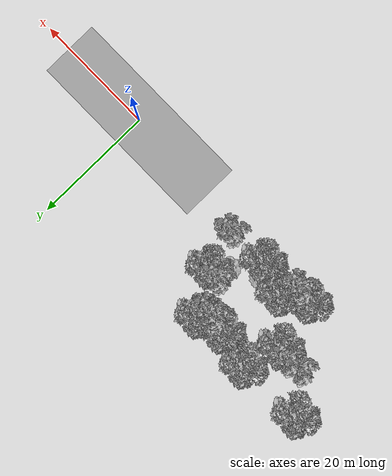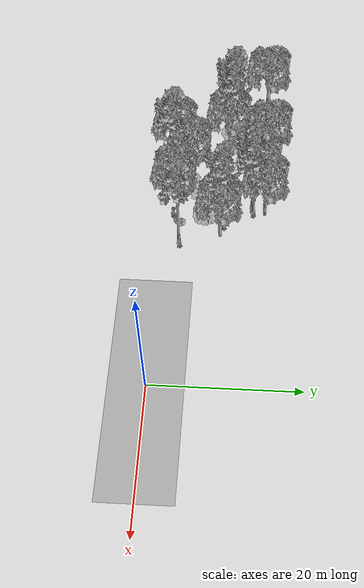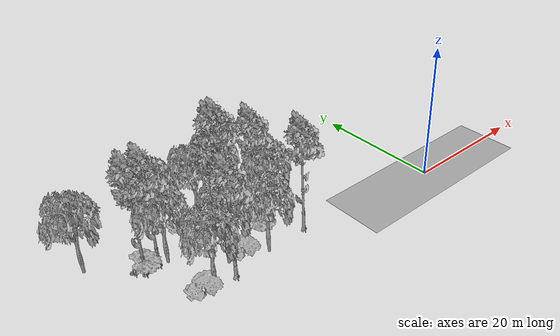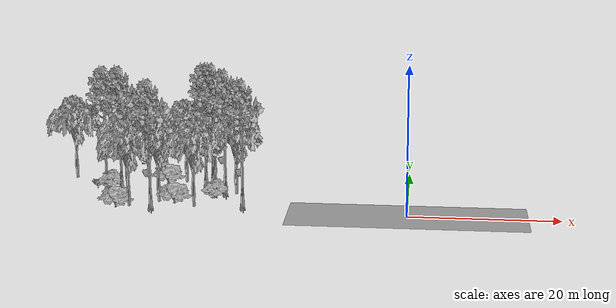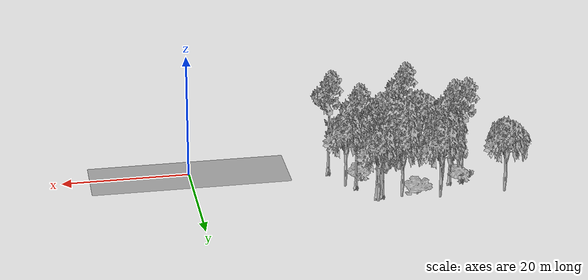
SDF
<sdf version="1.7">
 <world name="default">
  <model name="ground_plane">
   <static>1</static>
   <link name="link">
    <collision name="collision">
     <pose>-50 0 0 0 -0 0</pose>
     <geometry><plane><normal>0 0 1</normal><size>100 100</size></plane></geometry>
     <surface><contact><ode><min_depth>0.01</min_depth><max_vel>0</max_vel></ode></contact></surface>
    </collision>
    <visual name="grass">
     <cast_shadows>0</cast_shadows>
     <geometry>
      <mesh>
       <scale>0.5814285714285714 0.18142857142857144 0.1</scale>
       <uri>file://grass_plane/meshes/grass_plane.dae</uri>
      </mesh>
     </geometry>
    </visual>
   </link>
  </model>
  <model name="Tree 6">
   <static>1</static>
   <pose>-34.02520586374568 12.693943289851944 0 1.57079 -0 0</pose>
   <link name="link">
    <collision name="collision">
     <geometry><mesh><scale>3 2 3</scale><uri>model://tree_3/meshes/tree_3.obj</uri></mesh></geometry>
    </collision>
    <visual name="visual">
     <geometry><mesh><scale>3 2 3</scale><uri>model://tree_3/meshes/tree_3.obj</uri></mesh></geometry>
    </visual>
   </link>
  </model>
  <model name="Tree 15">
   <static>1</static>
   <pose>-27.600010558652393 14.27166555361124 0 1.57079 -0 0</pose>
   <link name="link">
    <collision name="collision">
     <geometry><mesh><scale>3.5 5 3.5</scale><uri>model://tree_2/meshes/tree_2.obj</uri></mesh></geometry>
    </collision>
    <visual name="visual">
     <geometry><mesh><scale>3.5 5 3.5</scale><uri>model://tree_2/meshes/tree_2.obj</uri></mesh></geometry>
    </visual>
   </link>
  </model>
  <model name="Tree 18">
   <static>1</static>
   <pose>-37.26954169039817 14.598448052054668 0 1.57079 -0 0</pose>
   <link name="link">
    <collision name="collision">
     <geometry><mesh><scale>3.5 5 3.5</scale><uri>model://tree_2/meshes/tree_2.obj</uri></mesh></geometry>
    </collision>
    <visual name="visual">
     <geometry><mesh><scale>3.5 5 3.5</scale><uri>model://tree_2/meshes/tree_2.obj</uri></mesh></geometry>
    </visual>
   </link>
  </model>
  <model name="Tree 29">
   <static>1</static>
   <pose>-21.935377720867585 2.63587096987899 0 1.57079 -0 0</pose>
   <link name="link">
    <collision name="collision">
     <geometry><mesh><scale>3.5 5 3.5</scale><uri>model://tree_9/meshes/tree_9.obj</uri></mesh></geometry>
    </collision>
    <visual name="visual">
     <geometry><mesh><scale>3.5 5 3.5</scale><uri>model://tree_9/meshes/tree_9.obj</uri></mesh></geometry>
    </visual>
   </link>
  </model>
  <model name="Tree 33">
   <static>1</static>
   <pose>-31.519277581109108 13.345279460212982 0 1.57079 -0 0</pose>
   <link name="link">
    <collision name="collision">
     <geometry><mesh><scale>3.5 5 3.5</scale><uri>model://tree_2/meshes/tree_2.obj</uri></mesh></geometry>
    </collision>
    <visual name="visual">
     <geometry><mesh><scale>3.5 5 3.5</scale><uri>model://tree_2/meshes/tree_2.obj</uri></mesh></geometry>
    </visual>
   </link>
  </model>
  <model name="Tree 47">
   <static>1</static>
   <pose>-42.01750058576796 9.197179123473529 0 1.57079 -0 0</pose>
   <link name="link">
    <collision name="collision">
     <geometry><mesh><scale>3.5 5 3.5</scale><uri>model://tree_9/meshes/tree_9.obj</uri></mesh></geometry>
    </collision>
    <visual name="visual">
     <geometry><mesh><scale>3.5 5 3.5</scale><uri>model://tree_9/meshes/tree_9.obj</uri></mesh></geometry>
    </visual>
   </link>
  </model>
  <model name="Tree 58">
   <static>1</static>
   <pose>-31.317967639548726 3.395387685728391 0 1.57079 -0 0</pose>
   <link name="link">
    <collision name="collision">
     <geometry><mesh><scale>3 2 3</scale><uri>model://tree_3/meshes/tree_3.obj</uri></mesh></geometry>
    </collision>
    <visual name="visual">
     <geometry><mesh><scale>3 2 3</scale><uri>model://tree_3/meshes/tree_3.obj</uri></mesh></geometry>
    </visual>
   </link>
  </model>
  <model name="Tree 59">
   <static>1</static>
   <pose>-37.153981824522994 1.405933167115819 0 1.57079 -0 0</pose>
   <link name="link">
    <collision name="collision">
     <geometry><mesh><scale>3.5 5 3.5</scale><uri>model://tree_2/meshes/tree_2.obj</uri></mesh></geometry>
    </collision>
    <visual name="visual">
     <geometry><mesh><scale>3.5 5 3.5</scale><uri>model://tree_2/meshes/tree_2.obj</uri></mesh></geometry>
    </visual>
   </link>
  </model>
  <model name="Tree 81">
   <static>1</static>
   <pose>-23.650989545362048 8.197016516741787 0 1.57079 -0 0</pose>
   <link name="link">
    <collision name="collision">
     <geometry><mesh><scale>3.5 5 3.5</scale><uri>model://tree_2/meshes/tree_2.obj</uri></mesh></geometry>
    </collision>
    <visual name="visual">
     <geometry><mesh><scale>3.5 5 3.5</scale><uri>model://tree_2/meshes/tree_2.obj</uri></mesh></geometry>
    </visual>
   </link>
  </model>
  <model name="Tree 111">
   <static>1</static>
   <pose>-34.12411735310238 1.2752849847245606 0 1.57079 -0 0</pose>
   <link name="link">
    <collision name="collision">
     <geometry><mesh><scale>3.5 5 3.5</scale><uri>model://tree_9/meshes/tree_9.obj</uri></mesh></geometry>
    </collision>
    <visual name="visual">
     <geometry><mesh><scale>3.5 5 3.5</scale><uri>model://tree_9/meshes/tree_9.obj</uri></mesh></geometry>
    </visual>
   </link>
  </model>
  <model name="Tree 117">
   <static>1</static>
   <pose>-39.96634895841382 9.46073109062841 0 1.57079 -0 0</pose>
   <link name="link">
    <collision name="collision">
     <geometry><mesh><scale>3.5 5 3.5</scale><uri>model://tree_9/meshes/tree_9.obj</uri></mesh></geometry>
    </collision>
    <visual name="visual">
     <geometry><mesh><scale>3.5 5 3.5</scale><uri>model://tree_9/meshes/tree_9.obj</uri></mesh></geometry>
    </visual>
   </link>
  </model>
  <model name="Tree 118">
   <static>1</static>
   <pose>-25.18227787952389 8.59171324538502 0 1.57079 -0 0</pose>
   <link name="link">
    <collision name="collision">
     <geometry><mesh><scale>3.5 5 3.5</scale><uri>model://tree_9/meshes/tree_9.obj</uri></mesh></geometry>
    </collision>
    <visual name="visual">
     <geometry><mesh><scale>3.5 5 3.5</scale><uri>model://tree_9/meshes/tree_9.obj</uri></mesh></geometry>
    </visual>
   </link>
  </model>
  <model name="Tree 120">
   <static>1</static>
   <pose>-33.53391546060068 3.6382242748473814 0 1.57079 -0 0</pose>
   <link name="link">
    <collision name="collision">
     <geometry><mesh><scale>3.5 5 3.5</scale><uri>model://tree_2/meshes/tree_2.obj</uri></mesh></geometry>
    </collision>
    <visual name="visual">
     <geometry><mesh><scale>3.5 5 3.5</scale><uri>model://tree_2/meshes/tree_2.obj</uri></mesh></geometry>
    </visual>
   </link>
  </model>
  <model name="Tree 139">
   <static>1</static>
   <pose>-47.6418641873549 14.205232710172226 0 1.57079 -0 0</pose>
   <link name="link">
    <collision name="collision">
     <geometry><mesh><scale>3.5 5 3.5</scale><uri>model://tree_2/meshes/tree_2.obj</uri></mesh></geometry>
    </collision>
    <visual name="visual">
     <geometry><mesh><scale>3.5 5 3.5</scale><uri>model://tree_2/meshes/tree_2.obj</uri></mesh></geometry>
    </visual>
   </link>
  </model>
  <model name="Tree 140">
   <static>1</static>
   <pose>-38.7913998909997 0.9758647257042039 0 1.57079 -0 0</pose>
   <link name="link">
    <collision name="collision">
     <geometry><mesh><scale>3 2 3</scale><uri>model://tree_3/meshes/tree_3.obj</uri></mesh></geometry>
    </collision>
    <visual name="visual">
     <geometry><mesh><scale>3 2 3</scale><uri>model://tree_3/meshes/tree_3.obj</uri></mesh></geometry>
    </visual>
   </link>
  </model>
  <model name="Tree 141">
   <static>1</static>
   <pose>-28.53987116129919 12.46793148778357 0 1.57079 -0 0</pose>
   <link name="link">
    <collision name="collision">
     <geometry><mesh><scale>3.5 5 3.5</scale><uri>model://tree_9/meshes/tree_9.obj</uri></mesh></geometry>
    </collision>
    <visual name="visual">
     <geometry><mesh><scale>3.5 5 3.5</scale><uri>model://tree_9/meshes/tree_9.obj</uri></mesh></geometry>
    </visual>
   </link>
  </model>
  <model name="Tree 147">
   <static>1</static>
   <pose>-28.471849135034688 1.955844222248949 0 1.57079 -0 0</pose>
   <link name="link">
    <collision name="collision">
     <geometry><mesh><scale>3.5 5 3.5</scale><uri>model://tree_2/meshes/tree_2.obj</uri></mesh></geometry>
    </collision>
    <visual name="visual">
     <geometry><mesh><scale>3.5 5 3.5</scale><uri>model://tree_2/meshes/tree_2.obj</uri></mesh></geometry>
    </visual>
   </link>
  </model>
  <model name="Tree 154">
   <static>1</static>
   <pose>-41.71242712724267 9.650717645246402 0 1.57079 -0 0</pose>
   <link name="link">
    <collision name="collision">
     <geometry><mesh><scale>4 2.5 4</scale><uri>model://tree_1/meshes/tree_1.obj</uri></mesh></geometry>
    </collision>
    <visual name="visual">
     <geometry><mesh><scale>4 2.5 4</scale><uri>model://tree_1/meshes/tree_1.obj</uri></mesh></geometry>
    </visual>
   </link>
  </model>
  <model name="Tree 163">
   <static>1</static>
   <pose>-39.064827640992874 8.83538649830486 0 1.57079 -0 0</pose>
   <link name="link">
    <collision name="collision">
     <geometry><mesh><scale>3.5 5 3.5</scale><uri>model://tree_2/meshes/tree_2.obj</uri></mesh></geometry>
    </collision>
    <visual name="visual">
     <geometry><mesh><scale>3.5 5 3.5</scale><uri>model://tree_2/meshes/tree_2.obj</uri></mesh></geometry>
    </visual>
   </link>
  </model>
  <model name="Tree 176">
   <static>1</static>
   <pose>-27.58941118212602 12.636477386257038 0 1.57079 -0 0</pose>
   <link name="link">
    <collision name="collision">
     <geometry><mesh><scale>3.5 5 3.5</scale><uri>model://tree_9/meshes/tree_9.obj</uri></mesh></geometry>
    </collision>
    <visual name="visual">
     <geometry><mesh><scale>3.5 5 3.5</scale><uri>model://tree_9/meshes/tree_9.obj</uri></mesh></geometry>
    </visual>
   </link>
  </model>
  <model name="Tree 177">
   <static>1</static>
   <pose>-26.37560315150784 6.395646836218461 0 1.57079 -0 0</pose>
   <link name="link">
    <collision name="collision">
     <geometry><mesh><scale>4 2.5 4</scale><uri>model://tree_1/meshes/tree_1.obj</uri></mesh></geometry>
    </collision>
    <visual name="visual">
     <geometry><mesh><scale>4 2.5 4</scale><uri>model://tree_1/meshes/tree_1.obj</uri></mesh></geometry>
    </visual>
   </link>
  </model>
  <model name="Bush 0">
   <static>1</static>
   <pose>-43.25637532644633 9.020744053836616 0 1.57079 -0 0</pose>
   <link name="link">
    <collision name="collision">
     <geometry><mesh><scale>2 2 2</scale><uri>model://bush_0/meshes/bush_0.obj</uri></mesh></geometry>
     <surface><contact><collide_without_contact>false</collide_without_contact></contact></surface>
    </collision>
    <visual name="visual">
     <geometry><mesh><scale>2 2 2</scale><uri>model://bush_0/meshes/bush_0.obj</uri></mesh></geometry>
    </visual>
   </link>
  </model>
 </world>
</sdf>
